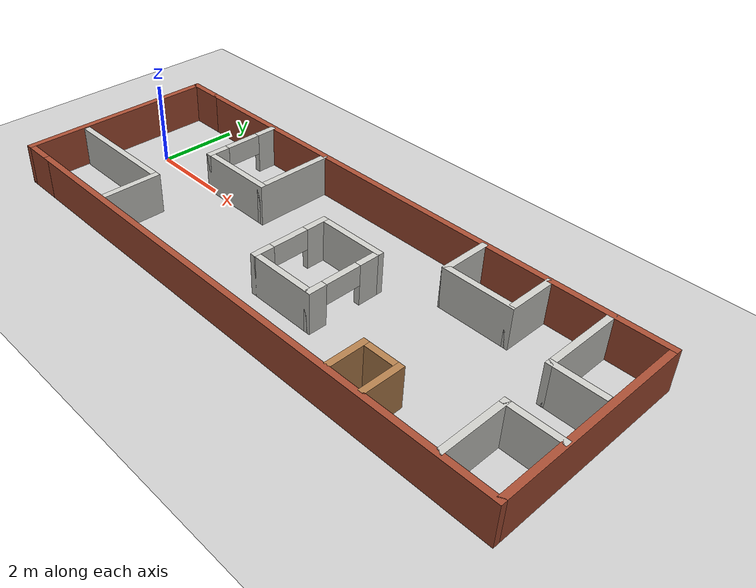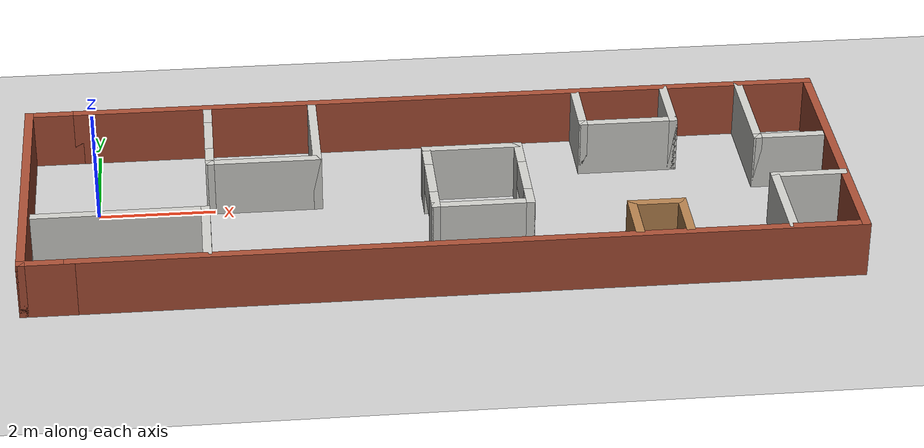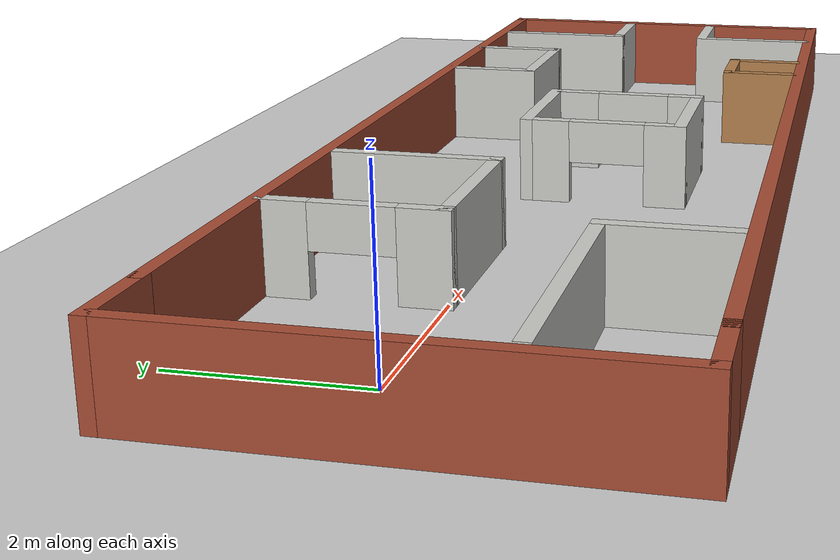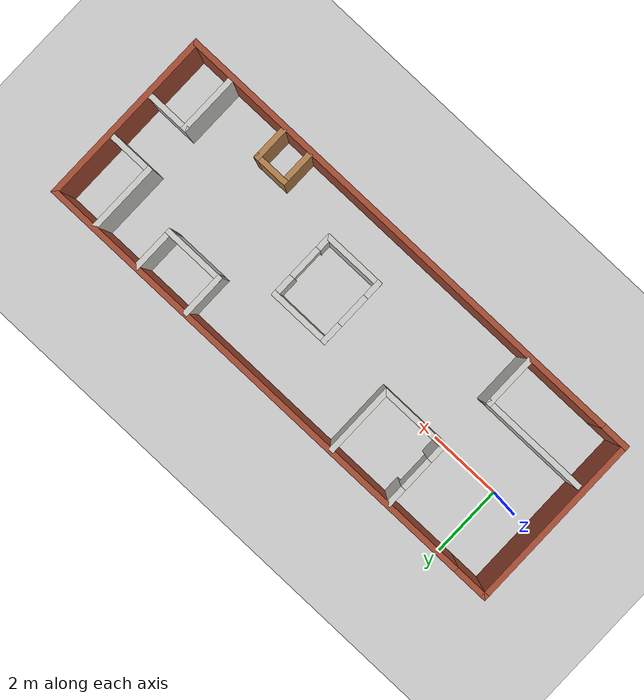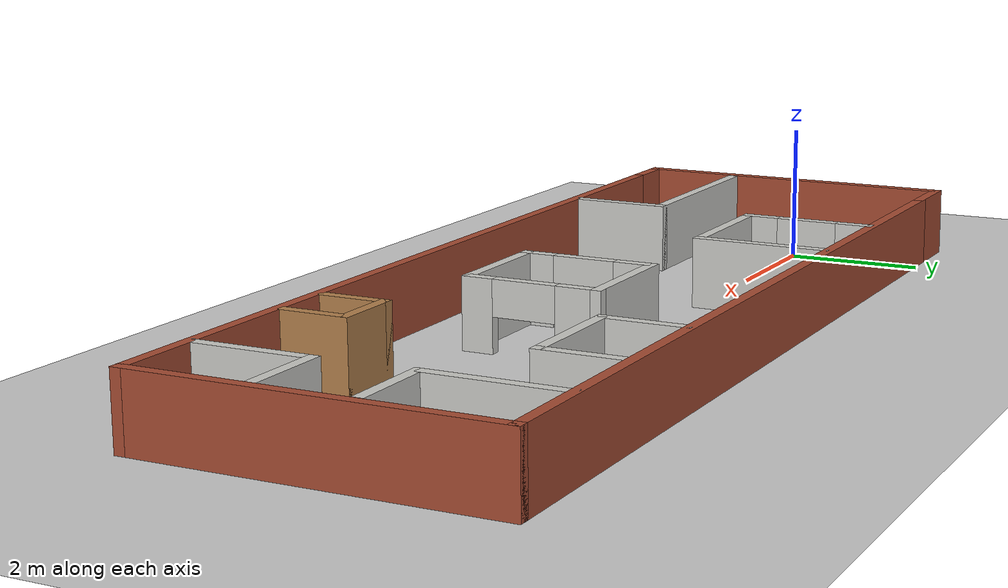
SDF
<?xml version="1.0"?>
<sdf version="1.6">
    <world name="myworld">
        <include>
            <uri>model://sun</uri>
        </include>

        <include>
            <uri>model://ground_plane</uri>
        </include>

        <model name='aisle'>
            <pose frame=''>5.776 -0.51 0 0 -0 0</pose>
            <link name='Wall_25'>
                <collision name='Wall_25_Collision'>
                    <geometry>
                        <box>
                            <size>13.25 0.15 1</size>
                        </box>
                    </geometry>
                    <pose frame=''>0 0 0.5 0 -0 0</pose>
                </collision>
                <visual name='Wall_25_Visual'>
                    <pose frame=''>0 0 0.5 0 -0 0</pose>
                    <geometry>
                        <box>
                            <size>13.25 0.15 1</size>
                        </box>
                    </geometry>
                    <material>
                        <script>
                            <uri>file://media/materials/scripts/gazebo.material</uri>
                            <name>Gazebo/Bricks</name>
                        </script>
                        <ambient>1 1 1 1</ambient>
                    </material>
                </visual>
                <pose frame=''>0.425 2.425 0 0 -0 0</pose>
            </link>
            <link name='Wall_26'>
                <collision name='Wall_26_Collision'>
                    <geometry>
                        <box>
                            <size>5 0.15 1</size>
                        </box>
                    </geometry>
                    <pose frame=''>0 0 0.5 0 -0 0</pose>
                </collision>
                <visual name='Wall_26_Visual'>
                    <pose frame=''>0 0 0.5 0 -0 0</pose>
                    <geometry>
                        <box>
                            <size>5 0.15 1</size>
                        </box>
                    </geometry>
                    <material>
                        <script>
                            <uri>file://media/materials/scripts/gazebo.material</uri>
                            <name>Gazebo/Bricks</name>
                        </script>
                        <ambient>1 1 1 1</ambient>
                    </material>
                </visual>
                <pose frame=''>6.975 0 0 0 0 -1.5708</pose>
            </link>
            <link name='Wall_27'>
                <collision name='Wall_27_Collision'>
                    <geometry>
                        <box>
                            <size>13.32 0.15 1</size>
                        </box>
                    </geometry>
                    <pose frame=''>0 0 0.5 0 -0 0</pose>
                </collision>
                <visual name='Wall_27_Visual'>
                    <pose frame=''>0 0 0.5 0 -0 0</pose>
                    <geometry>
                        <box>
                            <size>13.32 0.15 1</size>
                        </box>
                    </geometry>
                    <material>
                        <script>
                            <uri>file://media/materials/scripts/gazebo.material</uri>
                            <name>Gazebo/Bricks</name>
                        </script>
                        <ambient>1 1 1 1</ambient>
                    </material>
                </visual>
                <pose frame=''>0.390019 -2.425 0 0 -0 3.14159</pose>
            </link>
            <link name='Wall_28'>
                <collision name='Wall_28_Collision'>
                    <geometry>
                        <box>
                            <size>0.96502 0.15 1</size>
                        </box>
                    </geometry>
                    <pose frame=''>0 0 0.5 0 -0 0</pose>
                </collision>
                <visual name='Wall_28_Visual'>
                    <pose frame=''>0 0 0.5 0 -0 0</pose>
                    <geometry>
                        <box>
                            <size>0.96502 0.15 1</size>
                        </box>
                    </geometry>
                    <material>
                        <script>
                            <uri>file://media/materials/scripts/gazebo.material</uri>
                            <name>Gazebo/Bricks</name>
                        </script>
                        <ambient>1 1 1 1</ambient>
                    </material>
                </visual>
                <pose frame=''>-6.56749 -2.425 0 0 -0 3.14159</pose>
            </link>
            <link name='Wall_30'>
                <collision name='Wall_30_Collision'>
                    <geometry>
                        <box>
                            <size>1 0.15 1</size>
                        </box>
                    </geometry>
                    <pose frame=''>0 0 0.5 0 -0 0</pose>
                </collision>
                <visual name='Wall_30_Visual'>
                    <pose frame=''>0 0 0.5 0 -0 0</pose>
                    <geometry>
                        <box>
                            <size>1 0.15 1</size>
                        </box>
                    </geometry>
                    <material>
                        <script>
                            <uri>file://media/materials/scripts/gazebo.material</uri>
                            <name>Gazebo/Bricks</name>
                        </script>
                        <ambient>1 1 1 1</ambient>
                    </material>
                </visual>
                <pose frame=''>-6.55 2.425 0 0 -0 3.14159</pose>
            </link>
            <link name='Wall_31'>
                <collision name='Wall_31_Collision'>
                    <geometry>
                        <box>
                            <size>5 0.15 1</size>
                        </box>
                    </geometry>
                    <pose frame=''>0 0 0.5 0 -0 0</pose>
                </collision>
                <visual name='Wall_31_Visual'>
                    <pose frame=''>0 0 0.5 0 -0 0</pose>
                    <geometry>
                        <box>
                            <size>5 0.15 1</size>
                        </box>
                    </geometry>
                    <material>
                        <script>
                            <uri>file://media/materials/scripts/gazebo.material</uri>
                            <name>Gazebo/Bricks</name>
                        </script>
                        <ambient>1 1 1 1</ambient>
                    </material>
                </visual>
                <pose frame=''>-6.975 0 0 0 0 -1.5708</pose>
            </link>
            <link name='Wall_33'>
                <pose frame=''>-3.834 1.43 0 0 0 -1.5708</pose>
                <visual name='Wall_33_Visual_0'>
                    <pose frame=''>-0.726815 0 0.5 0 -0 0</pose>
                    <geometry>
                        <box>
                            <size>0.54637 0.15 1</size>
                        </box>
                    </geometry>
                    <material>
                        <script>
                            <uri>file://media/materials/scripts/gazebo.material</uri>
                            <name>Gazebo/CeilingTiled</name>
                        </script>
                        <ambient>1 1 1 1</ambient>
                    </material>
                </visual>
                <collision name='Wall_33_Collision_0'>
                    <geometry>
                        <box>
                            <size>0.54637 0.15 1</size>
                        </box>
                    </geometry>
                    <pose frame=''>-0.726815 0 0.5 0 -0 0</pose>
                </collision>
                <visual name='Wall_33_Visual_1'>
                    <pose frame=''>0.723185 0 0.5 0 -0 0</pose>
                    <geometry>
                        <box>
                            <size>0.55363 0.15 1</size>
                        </box>
                    </geometry>
                    <material>
                        <script>
                            <uri>file://media/materials/scripts/gazebo.material</uri>
                            <name>Gazebo/CeilingTiled</name>
                        </script>
                        <ambient>1 1 1 1</ambient>
                    </material>
                </visual>
                <collision name='Wall_33_Collision_1'>
                    <geometry>
                        <box>
                            <size>0.55363 0.15 1</size>
                        </box>
                    </geometry>
                    <pose frame=''>0.723185 0 0.5 0 -0 0</pose>
                </collision>
                <visual name='Wall_33_Visual_2'>
                    <pose frame=''>-0.00363 0 0.75 0 -0 0</pose>
                    <geometry>
                        <box>
                            <size>0.9 0.15 0.5</size>
                        </box>
                    </geometry>
                    <material>
                        <script>
                            <uri>file://media/materials/scripts/gazebo.material</uri>
                            <name>Gazebo/CeilingTiled</name>
                        </script>
                        <ambient>1 1 1 1</ambient>
                    </material>
                </visual>
                <collision name='Wall_33_Collision_2'>
                    <geometry>
                        <box>
                            <size>0.9 0.15 0.5</size>
                        </box>
                    </geometry>
                    <pose frame=''>-0.00363 0 0.75 0 -0 0</pose>
                </collision>
            </link>
            <link name='Wall_34'>
                <collision name='Wall_34_Collision'>
                    <geometry>
                        <box>
                            <size>2 0.15 1</size>
                        </box>
                    </geometry>
                    <pose frame=''>0 0 0.5 0 -0 0</pose>
                </collision>
                <visual name='Wall_34_Visual'>
                    <pose frame=''>0 0 0.5 0 -0 0</pose>
                    <geometry>
                        <box>
                            <size>2 0.15 1</size>
                        </box>
                    </geometry>
                    <material>
                        <script>
                            <uri>file://media/materials/scripts/gazebo.material</uri>
                            <name>Gazebo/CeilingTiled</name>
                        </script>
                        <ambient>1 1 1 1</ambient>
                    </material>
                </visual>
                <pose frame=''>-2.909 0.505 0 0 -0 0</pose>
            </link>
            <link name='Wall_35'>
                <collision name='Wall_35_Collision'>
                    <geometry>
                        <box>
                            <size>2 0.15 1</size>
                        </box>
                    </geometry>
                    <pose frame=''>0 0 0.5 0 -0 0</pose>
                </collision>
                <visual name='Wall_35_Visual'>
                    <pose frame=''>0 0 0.5 0 -0 0</pose>
                    <geometry>
                        <box>
                            <size>2 0.15 1</size>
                        </box>
                    </geometry>
                    <material>
                        <script>
                            <uri>file://media/materials/scripts/gazebo.material</uri>
                            <name>Gazebo/CeilingTiled</name>
                        </script>
                        <ambient>1 1 1 1</ambient>
                    </material>
                </visual>
                <pose frame=''>-1.984 1.43 0 0 -0 1.5708</pose>
            </link>
            <link name='Wall_37'>
                <collision name='Wall_37_Collision'>
                    <geometry>
                        <box>
                            <size>2 0.15 1</size>
                        </box>
                    </geometry>
                    <pose frame=''>0 0 0.5 0 -0 0</pose>
                </collision>
                <visual name='Wall_37_Visual'>
                    <pose frame=''>0 0 0.5 0 -0 0</pose>
                    <geometry>
                        <box>
                            <size>2 0.15 1</size>
                        </box>
                    </geometry>
                    <material>
                        <script>
                            <uri>file://media/materials/scripts/gazebo.material</uri>
                            <name>Gazebo/CeilingTiled</name>
                        </script>
                        <ambient>0.921569 0.807843 0.615686 1</ambient>
                    </material>
                </visual>
                <pose frame=''>5.716 1.465 0 0 0 -1.5708</pose>
            </link>
            <link name='Wall_40'>
                <collision name='Wall_40_Collision'>
                    <geometry>
                        <box>
                            <size>1.25 0.15 1</size>
                        </box>
                    </geometry>
                    <pose frame=''>0 0 0.5 0 -0 0</pose>
                </collision>
                <visual name='Wall_40_Visual'>
                    <pose frame=''>0 0 0.5 0 -0 0</pose>
                    <geometry>
                        <box>
                            <size>1.25 0.15 1</size>
                        </box>
                    </geometry>
                    <material>
                        <script>
                            <uri>file://media/materials/scripts/gazebo.material</uri>
                            <name>Gazebo/CeilingTiled</name>
                        </script>
                        <ambient>0.921569 0.807843 0.615686 1</ambient>
                    </material>
                </visual>
                <pose frame=''>6.266 0.54 0 0 -0 0</pose>
            </link>
            <link name='Wall_42'>
                <collision name='Wall_42_Collision'>
                    <geometry>
                        <box>
                            <size>1.31996 0.15 1</size>
                        </box>
                    </geometry>
                    <pose frame=''>0 0 0.5 0 -0 0</pose>
                </collision>
                <visual name='Wall_42_Visual'>
                    <pose frame=''>0 0 0.5 0 -0 0</pose>
                    <geometry>
                        <box>
                            <size>1.31996 0.15 1</size>
                        </box>
                    </geometry>
                    <material>
                        <script>
                            <uri>file://media/materials/scripts/gazebo.material</uri>
                            <name>Gazebo/CeilingTiled</name>
                        </script>
                        <ambient>0.921569 0.807843 0.615686 1</ambient>
                    </material>
                </visual>
                <pose frame=''>6.355 -0.776 0 0 -0 3.14159</pose>
            </link>
            <link name='Wall_43'>
                <collision name='Wall_43_Collision'>
                    <geometry>
                        <box>
                            <size>1.75 0.15 1</size>
                        </box>
                    </geometry>
                    <pose frame=''>0 0 0.5 0 -0 0</pose>
                </collision>
                <visual name='Wall_43_Visual'>
                    <pose frame=''>0 0 0.5 0 -0 0</pose>
                    <geometry>
                        <box>
                            <size>1.75 0.15 1</size>
                        </box>
                    </geometry>
                    <material>
                        <script>
                            <uri>file://media/materials/scripts/gazebo.material</uri>
                            <name>Gazebo/CeilingTiled</name>
                        </script>
                        <ambient>0.921569 0.807843 0.615686 1</ambient>
                    </material>
                </visual>
                <pose frame=''>5.77 -1.576 0 0 0 -1.5708</pose>
            </link>
            <link name='Wall_46'>
                <pose frame=''>-0.091 -0.302 0 0 0 -1.5708</pose>
                <visual name='Wall_46_Visual_0'>
                    <pose frame=''>-0.700822 0 0.5 0 -0 0</pose>
                    <geometry>
                        <box>
                            <size>0.598357 0.15 1</size>
                        </box>
                    </geometry>
                    <material>
                        <script>
                            <uri>file://media/materials/scripts/gazebo.material</uri>
                            <name>Gazebo/CeilingTiled</name>
                        </script>
                        <ambient>0.996078 0.47451 0.0196078 1</ambient>
                    </material>
                </visual>
                <collision name='Wall_46_Collision_0'>
                    <geometry>
                        <box>
                            <size>0.598357 0.15 1</size>
                        </box>
                    </geometry>
                    <pose frame=''>-0.700822 0 0.5 0 -0 0</pose>
                </collision>
                <visual name='Wall_46_Visual_1'>
                    <pose frame=''>0.749178 0 0.5 0 -0 0</pose>
                    <geometry>
                        <box>
                            <size>0.501643 0.15 1</size>
                        </box>
                    </geometry>
                    <material>
                        <script>
                            <uri>file://media/materials/scripts/gazebo.material</uri>
                            <name>Gazebo/CeilingTiled</name>
                        </script>
                        <ambient>0.996078 0.47451 0.0196078 1</ambient>
                    </material>
                </visual>
                <collision name='Wall_46_Collision_1'>
                    <geometry>
                        <box>
                            <size>0.501643 0.15 1</size>
                        </box>
                    </geometry>
                    <pose frame=''>0.749178 0 0.5 0 -0 0</pose>
                </collision>
                <visual name='Wall_46_Visual_2'>
                    <pose frame=''>0.048357 0 0.75 0 -0 0</pose>
                    <geometry>
                        <box>
                            <size>0.9 0.15 0.5</size>
                        </box>
                    </geometry>
                    <material>
                        <script>
                            <uri>file://media/materials/scripts/gazebo.material</uri>
                            <name>Gazebo/CeilingTiled</name>
                        </script>
                        <ambient>0.996078 0.47451 0.0196078 1</ambient>
                    </material>
                </visual>
                <collision name='Wall_46_Collision_2'>
                    <geometry>
                        <box>
                            <size>0.9 0.15 0.5</size>
                        </box>
                    </geometry>
                    <pose frame=''>0.048357 0 0.75 0 -0 0</pose>
                </collision>
            </link>
            <link name='Wall_47'>
                <collision name='Wall_47_Collision'>
                    <geometry>
                        <box>
                            <size>1.75 0.15 1</size>
                        </box>
                    </geometry>
                    <pose frame=''>0 0 0.5 0 -0 0</pose>
                </collision>
                <visual name='Wall_47_Visual'>
                    <pose frame=''>0 0 0.5 0 -0 0</pose>
                    <geometry>
                        <box>
                            <size>1.75 0.15 1</size>
                        </box>
                    </geometry>
                    <material>
                        <script>
                            <uri>file://media/materials/scripts/gazebo.material</uri>
                            <name>Gazebo/CeilingTiled</name>
                        </script>
                        <ambient>0.996078 0.47451 0.0196078 1</ambient>
                    </material>
                </visual>
                <pose frame=''>0.709 -1.227 0 0 -0 0</pose>
            </link>
            <link name='Wall_48'>
                <pose frame=''>1.509 -0.302 0 0 -0 1.5708</pose>
                <visual name='Wall_48_Visual_0'>
                    <pose frame=''>-0.775413 0 0.5 0 -0 0</pose>
                    <geometry>
                        <box>
                            <size>0.449173 0.15 1</size>
                        </box>
                    </geometry>
                    <material>
                        <script>
                            <uri>file://media/materials/scripts/gazebo.material</uri>
                            <name>Gazebo/CeilingTiled</name>
                        </script>
                        <ambient>0.996078 0.47451 0.0196078 1</ambient>
                    </material>
                </visual>
                <collision name='Wall_48_Collision_0'>
                    <geometry>
                        <box>
                            <size>0.449173 0.15 1</size>
                        </box>
                    </geometry>
                    <pose frame=''>-0.775413 0 0.5 0 -0 0</pose>
                </collision>
                <visual name='Wall_48_Visual_1'>
                    <pose frame=''>0.674587 0 0.5 0 -0 0</pose>
                    <geometry>
                        <box>
                            <size>0.650827 0.15 1</size>
                        </box>
                    </geometry>
                    <material>
                        <script>
                            <uri>file://media/materials/scripts/gazebo.material</uri>
                            <name>Gazebo/CeilingTiled</name>
                        </script>
                        <ambient>0.996078 0.47451 0.0196078 1</ambient>
                    </material>
                </visual>
                <collision name='Wall_48_Collision_1'>
                    <geometry>
                        <box>
                            <size>0.650827 0.15 1</size>
                        </box>
                    </geometry>
                    <pose frame=''>0.674587 0 0.5 0 -0 0</pose>
                </collision>
                <visual name='Wall_48_Visual_2'>
                    <pose frame=''>-0.100827 0 0.75 0 -0 0</pose>
                    <geometry>
                        <box>
                            <size>0.9 0.15 0.5</size>
                        </box>
                    </geometry>
                    <material>
                        <script>
                            <uri>file://media/materials/scripts/gazebo.material</uri>
                            <name>Gazebo/CeilingTiled</name>
                        </script>
                        <ambient>0.996078 0.47451 0.0196078 1</ambient>
                    </material>
                </visual>
                <collision name='Wall_48_Collision_2'>
                    <geometry>
                        <box>
                            <size>0.9 0.15 0.5</size>
                        </box>
                    </geometry>
                    <pose frame=''>-0.100827 0 0.75 0 -0 0</pose>
                </collision>
            </link>
            <link name='Wall_49'>
                <collision name='Wall_49_Collision'>
                    <geometry>
                        <box>
                            <size>1.75 0.15 1</size>
                        </box>
                    </geometry>
                    <pose frame=''>0 0 0.5 0 -0 0</pose>
                </collision>
                <visual name='Wall_49_Visual'>
                    <pose frame=''>0 0 0.5 0 -0 0</pose>
                    <geometry>
                        <box>
                            <size>1.75 0.15 1</size>
                        </box>
                    </geometry>
                    <material>
                        <script>
                            <uri>file://media/materials/scripts/gazebo.material</uri>
                            <name>Gazebo/CeilingTiled</name>
                        </script>
                        <ambient>0.996078 0.47451 0.0196078 1</ambient>
                    </material>
                </visual>
                <pose frame=''>0.709 0.623 0 0 -0 3.14159</pose>
            </link>
            <link name='Wall_51'>
                <collision name='Wall_51_Collision'>
                    <geometry>
                        <box>
                            <size>3 0.15 1</size>
                        </box>
                    </geometry>
                    <pose frame=''>0 0 0.5 0 -0 0</pose>
                </collision>
                <visual name='Wall_51_Visual'>
                    <pose frame=''>0 0 0.5 0 -0 0</pose>
                    <geometry>
                        <box>
                            <size>3 0.15 1</size>
                        </box>
                    </geometry>
                    <material>
                        <script>
                            <uri>file://media/materials/scripts/gazebo.material</uri>
                            <name>Gazebo/CeilingTiled</name>
                        </script>
                        <ambient>0.435294 0.796078 0.67451 1</ambient>
                    </material>
                </visual>
                <pose frame=''>-5.364 -0.986 0 0 -0 0</pose>
            </link>
            <link name='Wall_52'>
                <collision name='Wall_52_Collision'>
                    <geometry>
                        <box>
                            <size>1.5 0.15 1</size>
                        </box>
                    </geometry>
                    <pose frame=''>0 0 0.5 0 -0 0</pose>
                </collision>
                <visual name='Wall_52_Visual'>
                    <pose frame=''>0 0 0.5 0 -0 0</pose>
                    <geometry>
                        <box>
                            <size>1.5 0.15 1</size>
                        </box>
                    </geometry>
                    <material>
                        <script>
                            <uri>file://media/materials/scripts/gazebo.material</uri>
                            <name>Gazebo/CeilingTiled</name>
                        </script>
                        <ambient>0.435294 0.796078 0.67451 1</ambient>
                    </material>
                </visual>
                <pose frame=''>-3.939 -1.661 0 0 0 -1.5708</pose>
            </link>
            <link name='Wall_54'>
                <collision name='Wall_54_Collision'>
                    <geometry>
                        <box>
                            <size>1.25 0.15 1</size>
                        </box>
                    </geometry>
                    <pose frame=''>0 0 0.5 0 -0 0</pose>
                </collision>
                <visual name='Wall_54_Visual'>
                    <pose frame=''>0 0 0.5 0 -0 0</pose>
                    <geometry>
                        <box>
                            <size>1.25 0.15 1</size>
                        </box>
                    </geometry>
                    <material>
                        <script>
                            <uri>file://media/materials/scripts/gazebo.material</uri>
                            <name>Gazebo/CeilingTiled</name>
                        </script>
                        <ambient>0.921569 0.807843 0.615686 1</ambient>
                    </material>
                </visual>
                <pose frame=''>2.743 1.822 0 0 0 -1.5708</pose>
            </link>
            <link name='Wall_55'>
                <collision name='Wall_55_Collision'>
                    <geometry>
                        <box>
                            <size>1.75 0.15 1</size>
                        </box>
                    </geometry>
                    <pose frame=''>0 0 0.5 0 -0 0</pose>
                </collision>
                <visual name='Wall_55_Visual'>
                    <pose frame=''>0 0 0.5 0 -0 0</pose>
                    <geometry>
                        <box>
                            <size>1.75 0.15 1</size>
                        </box>
                    </geometry>
                    <material>
                        <script>
                            <uri>file://media/materials/scripts/gazebo.material</uri>
                            <name>Gazebo/CeilingTiled</name>
                        </script>
                        <ambient>0.921569 0.807843 0.615686 1</ambient>
                    </material>
                </visual>
                <pose frame=''>3.543 1.272 0 0 -0 0</pose>
            </link>
            <link name='Wall_56'>
                <collision name='Wall_56_Collision'>
                    <geometry>
                        <box>
                            <size>1.25 0.15 1</size>
                        </box>
                    </geometry>
                    <pose frame=''>0 0 0.5 0 -0 0</pose>
                </collision>
                <visual name='Wall_56_Visual'>
                    <pose frame=''>0 0 0.5 0 -0 0</pose>
                    <geometry>
                        <box>
                            <size>1.25 0.15 1</size>
                        </box>
                    </geometry>
                    <material>
                        <script>
                            <uri>file://media/materials/scripts/gazebo.material</uri>
                            <name>Gazebo/CeilingTiled</name>
                        </script>
                        <ambient>1 1 1 1</ambient>
                    </material>
                </visual>
                <pose frame=''>4.343 1.822 0 0 -0 1.5708</pose>
            </link>
            <link name='Wall_58'>
                <collision name='Wall_58_Collision'>
                    <geometry>
                        <box>
                            <size>1 0.15 1</size>
                        </box>
                    </geometry>
                    <pose frame=''>0 0 0.5 0 -0 0</pose>
                </collision>
                <visual name='Wall_58_Visual'>
                    <pose frame=''>0 0 0.5 0 -0 0</pose>
                    <geometry>
                        <box>
                            <size>1 0.15 1</size>
                        </box>
                    </geometry>
                    <material>
                        <script>
                            <uri>file://media/materials/scripts/gazebo.material</uri>
                            <name>Gazebo/Wood</name>
                        </script>
                        <ambient>1 1 1 1</ambient>
                    </material>
                </visual>
                <pose frame=''>3.197 -1.89 0 0 -0 1.5708</pose>
            </link>
            <link name='Wall_59'>
                <collision name='Wall_59_Collision'>
                    <geometry>
                        <box>
                            <size>1 0.15 1</size>
                        </box>
                    </geometry>
                    <pose frame=''>0 0 0.5 0 -0 0</pose>
                </collision>
                <visual name='Wall_59_Visual'>
                    <pose frame=''>0 0 0.5 0 -0 0</pose>
                    <geometry>
                        <box>
                            <size>1 0.15 1</size>
                        </box>
                    </geometry>
                    <material>
                        <script>
                            <uri>file://media/materials/scripts/gazebo.material</uri>
                            <name>Gazebo/Wood</name>
                        </script>
                        <ambient>1 1 1 1</ambient>
                    </material>
                </visual>
                <pose frame=''>3.622 -1.465 0 0 -0 0</pose>
            </link>
            <link name='Wall_60'>
                <collision name='Wall_60_Collision'>
                    <geometry>
                        <box>
                            <size>1 0.15 1</size>
                        </box>
                    </geometry>
                    <pose frame=''>0 0 0.5 0 -0 0</pose>
                </collision>
                <visual name='Wall_60_Visual'>
                    <pose frame=''>0 0 0.5 0 -0 0</pose>
                    <geometry>
                        <box>
                            <size>1 0.15 1</size>
                        </box>
                    </geometry>
                    <material>
                        <script>
                            <uri>file://media/materials/scripts/gazebo.material</uri>
                            <name>Gazebo/Wood</name>
                        </script>
                        <ambient>1 1 1 1</ambient>
                    </material>
                </visual>
                <pose frame=''>4.047 -1.89 0 0 0 -1.5708</pose>
            </link>
            <static>1</static>
        </model>
    </world>
</sdf>
